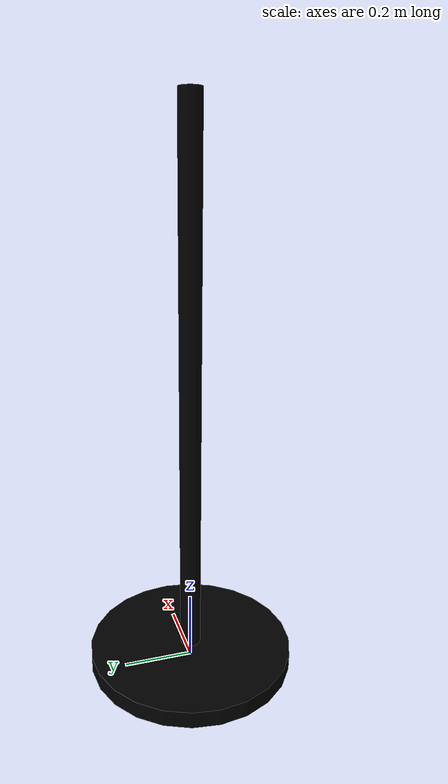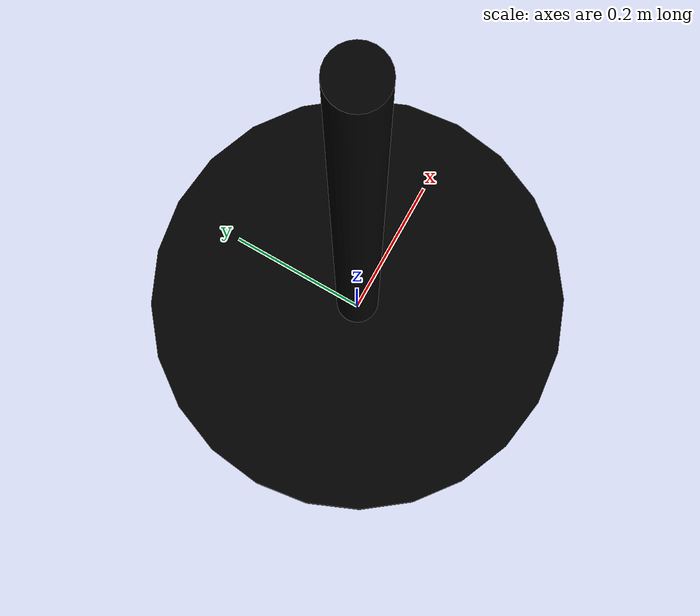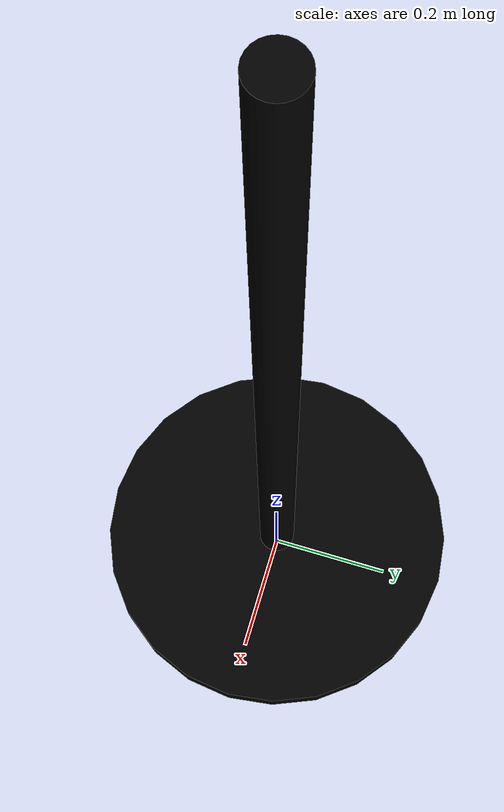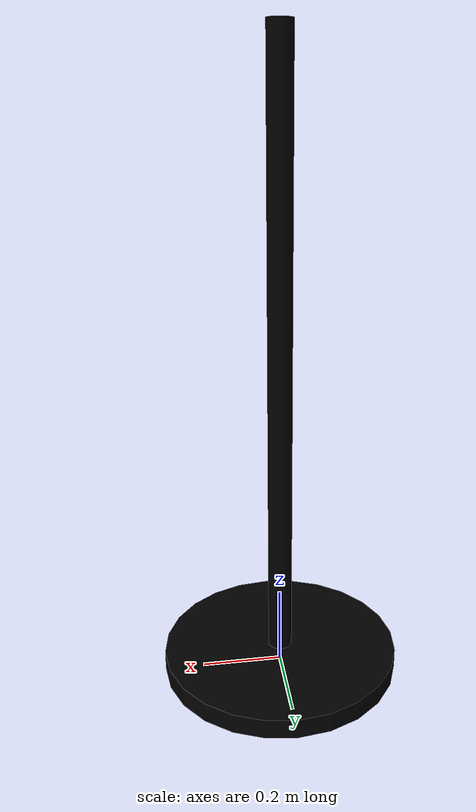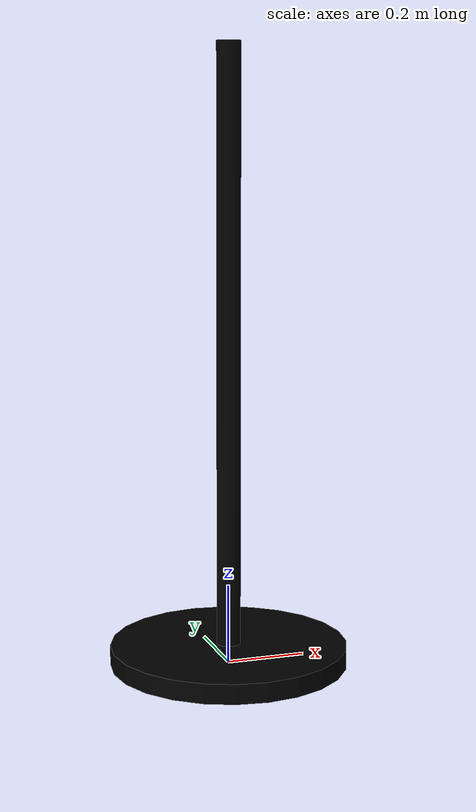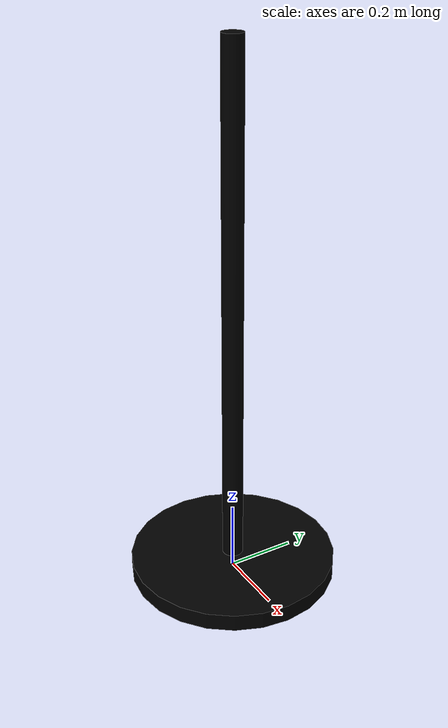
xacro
<?xml version="1.0" ?>

<robot name="stand" xmlns:xacro="http://www.ros.org/wiki/xacro">
    <xacro:arg name="gazebo" default="false"/>
    <xacro:if value="$(arg gazebo)">
        <!-- Gazebo Tags -->
        <xacro:include filename="$(find kinect_description)/urdf/stand/stand.gazebo.xacro"/>
    </xacro:if>
    <xacro:include filename="$(find kinect_description)/urdf/stand/properties.xacro"/>
    <xacro:include filename="$(find kinect_description)/urdf/stand/materials.xacro"/>
    <xacro:include filename="$(find kinect_description)/urdf/stand/macros.xacro"/>

    <link name="footprint"/>

    <joint name="base_joint" type="fixed">
        <parent link="footprint"/>
        <child link="foot"/>
    </joint>

    <link name="foot">
        <visual>
            <origin xyz="0 0 ${footHeight/2}" rpy="0 0 0"/>
            <geometry>
                <cylinder length="${footHeight}" radius="${footRadius}"/>
            </geometry>
            <material name="black"/>
        </visual>
        <collision>
            <origin xyz="0 0 ${footHeight/2}" rpy="0 0 0"/>
            <geometry>
                <cylinder length="${footHeight}" radius="${footRadius}"/>
            </geometry>
            <contact_coefficients mu="0" kp="1000.0" kd="1.0"/>
        </collision>
        <inertial>
            <mass value="${footMass}"/>
            <cylinder_inertia m="${footMass}"
                              r="${footRadius}" h="${footHeight}"/>
        </inertial>
    </link>

    <joint name="foot_joint" type="fixed">
        <parent link="foot"/>
        <child link="stand"/>
        <origin xyz="0 0 ${footHeight}" rpy="0 0 0"/>
    </joint>

    <link name="stand">
        <visual>
            <origin xyz="0 0 ${standHeight/2}" rpy="0 0 0"/>
            <geometry>
                <cylinder length="${standHeight}" radius="${standRadius}"/>
            </geometry>
            <material name="black"/>
        </visual>
        <collision>
            <origin xyz="0 0 ${footHeight/2+standHeight/2}" rpy="0 0 0"/>
            <geometry>
                <cylinder length="${standHeight}" radius="${standRadius}"/>
            </geometry>
            <contact_coefficients mu="0" kp="1000.0" kd="1.0"/>
        </collision>
        <inertial>
            <mass value="${standMass}"/>
            <cylinder_inertia m="${standMass}"
                              r="${standRadius}" h="${standHeight}"/>
        </inertial>
    </link>

    <joint name="sensor_joint" type="fixed">
        <parent link="stand"/>
        <child link="sensor_link"/>
        <origin xyz="0 0 ${footHeight+standHeight}" rpy="0 0 ${PI}"/>
    </joint>

    <link name="sensor_link"/>
</robot>

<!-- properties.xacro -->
<robot name="mybot" xmlns:xacro="http://www.ros.org/wiki/xacro">
    <xacro:property name="PI" value="3.1415926535897931"/>

    <xacro:property name="footRadius" value="0.3"/>
    <xacro:property name="footHeight" value="0.05"/>
    <xacro:property name="footMass" value="5.0"/>

    <xacro:property name="standRadius" value="0.03"/>
    <xacro:property name="standHeight" value="1.5"/>
    <xacro:property name="standMass" value="0.5"/>
</robot>

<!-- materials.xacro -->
<robot name="mybot" xmlns:xacro="http://www.ros.org/wiki/xacro">
    <material name="black">
        <color rgba="0.0 0.0 0.0 1.0"/>
    </material>
</robot>

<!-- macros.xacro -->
<robot name="mybot" xmlns:xacro="http://www.ros.org/wiki/xacro">
    <macro name="cylinder_inertia" params="m r h">
        <inertia  ixx="${m*(3*r*r+h*h)/12}" ixy = "0" ixz = "0"
                  iyy="${m*(3*r*r+h*h)/12}" iyz = "0"
                  izz="${m*r*r/2}"
        />
    </macro>
</robot>
